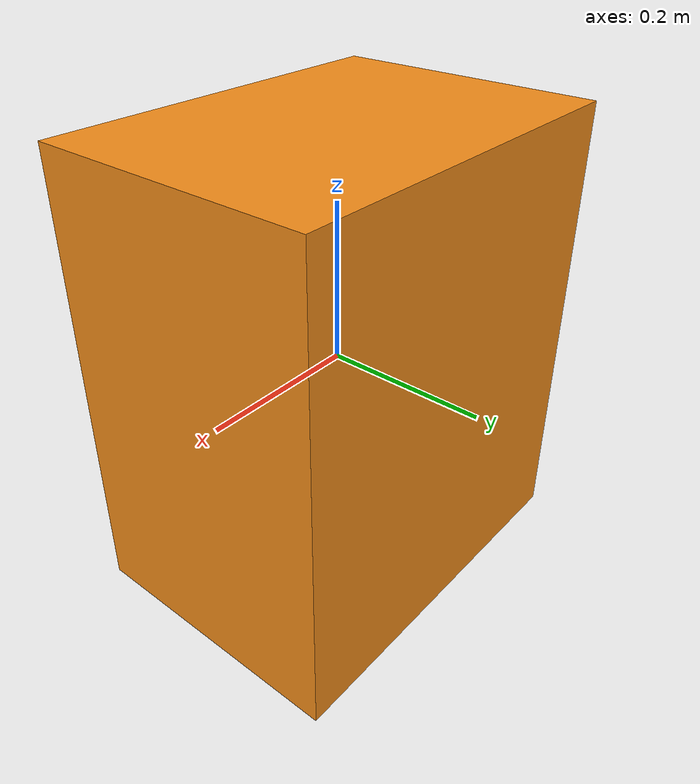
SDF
<?xml version="1.0"?>
<sdf version="1.7">
  <model name="unsupported_elements_test">
    <pose>0 0 0.0 0 0 0</pose>
    <link name="unsupported_elements_test">
      <pose>0 0 0 0 0 0</pose>
      <self_collide>0</self_collide>
      <kinematic>0</kinematic>
      <visual name="visual">
        <pose>0 0 0 0 0 0</pose>
        <geometry>
          <box>
            <size>0.486 0.35 0.581</size>
          </box>
        </geometry>
        <material>
          <lighting>1</lighting>
          <script>
            <uri>file://media/materials/scripts/gazebo.material</uri>
            <name>Gazebo/Orange</name>
          </script>
          <ambient>0.3 0.3 0.3 1</ambient>
          <diffuse>0.7 0.7 0.7 1</diffuse>
          <specular>0.01 0.01 0.01 1</specular>
          <emissive>0 0 0 1</emissive>
          <shader type="vertex">
            <normal_map>__default__</normal_map>
          </shader>
        </material>
        <cast_shadows>1</cast_shadows>
        <transparency>0</transparency>
      </visual>
      <collision name="collision">
        <geometry>
          <box>
            <size>0.486 0.35 0.581</size>
          </box>
        </geometry>
        <drake:proximity_properties>
          <drake:QQQ_dynamic/>
        </drake:proximity_properties>
      </collision>
      <drake:proximity_properties/>
    </link>
  </model>
</sdf>
